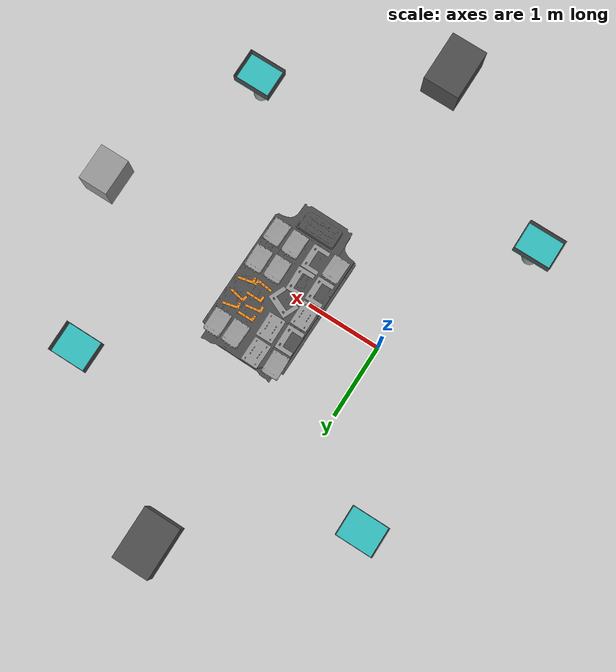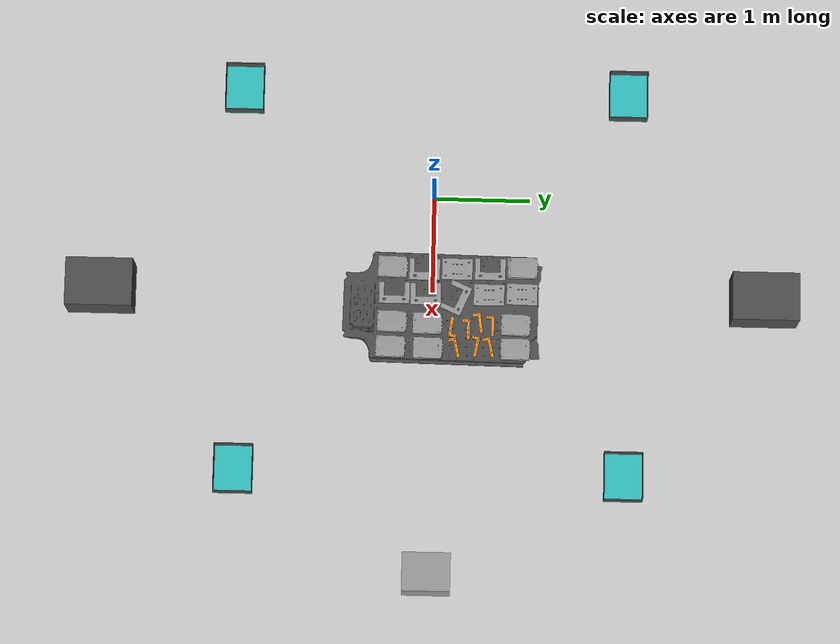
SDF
<sdf version="1.6">
 <world name="default">
  <scene><shadows>0</shadows><ambient>0.4 0.4 0.4 1</ambient><background>0.7 0.7 0.7 1</background></scene>
  <model name="ground_plane">
   <static>1</static>
   <link name="link">
    <collision name="collision">
     <geometry><plane><normal>0 0 1</normal><size>100 100</size></plane></geometry>
     <surface><friction><ode><mu>100</mu><mu2>50</mu2></ode></friction></surface>
    </collision>
    <visual name="visual">
     <cast_shadows>0</cast_shadows>
     <geometry><plane><normal>0 0 1</normal><size>100 100</size></plane></geometry>
     <material>
      <script><uri>file://media/materials/scripts/gazebo.material</uri><name>PR2/Grey3</name></script>
     </material>
    </visual>
   </link>
  </model>
  <light name="sun" type="directional">
   <pose>0 0 10 0 -0 0</pose>
   <diffuse>0.8 0.8 0.8 1</diffuse>
   <specular>0.2 0.2 0.2 1</specular>
   <attenuation>
    <range>1000</range>
    <constant>0.9</constant>
    <linear>0.01</linear>
    <quadratic>0.001</quadratic>
   </attenuation>
   <direction>-0.5 0.1 -0.9</direction>
  </light>
  <model name="animated_box_centre">
   <pose>4.0 0.0 0.25 0 0 0</pose>
   <link name="link">
    <collision name="collision"><geometry><box><size>0.4 0.4 0.5</size></box></geometry></collision>
    <visual name="visual">
     <geometry><box><size>0.4 0.5 0.5</size></box></geometry>
     <material>
      <script><uri>file://media/materials/scripts/gazebo.material</uri><name>Gazebo/Grey</name></script>
     </material>
    </visual>
   </link>
   <plugin name="move_centre" filename="libanimated_centre.so"/>
  </model>
  <model name="animated_box_1">
   <pose>1.05, 3.47, 0.25 0 0 0</pose>
   <link name="link">
    <collision name="collision"><geometry><box><size>0.5 0.7 0.5</size></box></geometry></collision>
    <visual name="visual">
     <geometry><box><size>0.5 0.7 0.5</size></box></geometry>
     <material>
      <script><uri>file://media/materials/scripts/gazebo.material</uri><name>Gazebo/DarkGrey</name></script>
     </material>
    </visual>
   </link>
   <plugin name="move1" filename="libanimated_left.so"/>
  </model>
  <model name="animated_box_2">
   <pose>1.05, -3.47, 0.25 0 0 0</pose>
   <link name="link">
    <collision name="collision"><geometry><box><size>0.5 0.7 0.5</size></box></geometry></collision>
    <visual name="visual">
     <geometry><box><size>0.5 0.7 0.5</size></box></geometry>
     <material>
      <script><uri>file://media/materials/scripts/gazebo.material</uri><name>Gazebo/DarkGrey</name></script>
     </material>
    </visual>
   </link>
   <plugin name="move2" filename="libanimated_right.so"/>
  </model>
  <model name="tesla_battery">
   <static>1</static>
   <link name="link0">
    <collision name="collision">
     <pose>0 0.15 -0.05445 0 -0 0</pose>
     <geometry><box><size>1 1.9 0.12</size></box></geometry>
     <surface><friction><ode><mu>1</mu><mu2>1</mu2></ode></friction></surface>
    </collision>
    <visual name="visual">
     <geometry><mesh><uri>model://tesla_battery_v2/meshes/tesla_batteryv2.dae</uri></mesh></geometry>
     <material>
      <script><uri>file://media/materials/scripts/gazebo.material</uri><name>Gazebo/DarkGrey</name></script>
     </material>
    </visual>
   </link>
   <pose>1.3153 -0.001845 0.8 0 -0 0</pose>
  </model>
  <model name="tesla_battery_support">
   <static>1</static>
   <link name="link0">
    <collision name="collision"><geometry><box><size>0.7 2.8 0.5</size></box></geometry></collision>
   </link>
   <pose>1.3 0 0.25 0 -0 0</pose>
  </model>
  <model name="bin_1">
   <static>1</static>
   <link name="column_link">
    <collision name="column">
     <pose>0 0 0.3 0 -0 0</pose>
     <geometry><box><size>0.4 0.5 0.6</size></box></geometry>
     <surface><friction><ode><mu>0.6</mu><mu2>0.6</mu2></ode></friction></surface>
    </collision>
    <visual name="column">
     <pose>0 0 0.3 0 -0 0</pose>
     <geometry><cylinder><radius>0.1</radius><length>0.6</length></cylinder></geometry>
     <material>
      <script><uri>file://media/materials/scripts/gazebo.material</uri><name>PR2/Grey4</name></script>
     </material>
    </visual>
   </link>
   <joint name="column2table" type="revolute">
    <parent>column_link</parent>
    <child>table_link</child>
    <pose>0 0 0.3 0 -0 0</pose>
   </joint>
   <link name="table_link">
    <collision name="surface">
     <pose>0 0 0.6 0 -0 0</pose>
     <geometry><box><size>0.5 0.4 0.03</size></box></geometry>
     <surface><friction><ode><mu>0.6</mu><mu2>0.6</mu2></ode></friction></surface>
    </collision>
    <visual name="surface">
     <pose>0 0 0.6 0 -0 0</pose>
     <geometry><box><size>0.5 0.4 0.03</size></box></geometry>
     <material>
      <script><uri>file://media/materials/scripts/gazebo.material</uri><name>Gazebo/Turquoise</name></script>
     </material>
    </visual>
   </link>
   <joint name="table2bin" type="prismatic">
    <parent>table_link</parent>
    <child>bin_link</child>
    <pose>0 0 1 0 -0 0</pose>
    <axis>
     <xyz>0 0 1</xyz>
     <use_parent_model_frame>0</use_parent_model_frame>
     <limit><lower>-1e+16</lower><upper>1e+16</upper></limit>
     <dynamics><spring_reference>0</spring_reference><spring_stiffness>0</spring_stiffness></dynamics>
    </axis>
   </joint>
   <link name="bin_link">
    <collision name="bin">
     <pose>0 0 0.68 0 -0 0</pose>
     <geometry><mesh><uri>model://table_bin/meshes/big_bin.stl</uri></mesh></geometry>
    </collision>
    <visual name="bin">
     <pose>0 0 0.68 0 -0 0</pose>
     <geometry><mesh><uri>model://table_bin/meshes/big_bin.dae</uri></mesh></geometry>
     <material>
      <script><uri>file://media/materials/scripts/gazebo.material</uri><name>Gazebo/DarkGrey</name></script>
     </material>
    </visual>
   </link>
   <pose>-1 2 0 0 -0 0</pose>
  </model>
  <model name="bin_2">
   <static>1</static>
   <link name="column_link">
    <collision name="column">
     <pose>0 0 0.3 0 -0 0</pose>
     <geometry><box><size>0.4 0.5 0.6</size></box></geometry>
     <surface><friction><ode><mu>0.6</mu><mu2>0.6</mu2></ode></friction></surface>
    </collision>
    <visual name="column">
     <pose>0 0 0.3 0 -0 0</pose>
     <geometry><cylinder><radius>0.1</radius><length>0.6</length></cylinder></geometry>
     <material>
      <script><uri>file://media/materials/scripts/gazebo.material</uri><name>PR2/Grey4</name></script>
     </material>
    </visual>
   </link>
   <joint name="column2table" type="revolute">
    <parent>column_link</parent>
    <child>table_link</child>
    <pose>0 0 0.3 0 -0 0</pose>
   </joint>
   <link name="table_link">
    <collision name="surface">
     <pose>0 0 0.6 0 -0 0</pose>
     <geometry><box><size>0.5 0.4 0.03</size></box></geometry>
     <surface><friction><ode><mu>0.6</mu><mu2>0.6</mu2></ode></friction></surface>
    </collision>
    <visual name="surface">
     <pose>0 0 0.6 0 -0 0</pose>
     <geometry><box><size>0.5 0.4 0.03</size></box></geometry>
     <material>
      <script><uri>file://media/materials/scripts/gazebo.material</uri><name>Gazebo/Turquoise</name></script>
     </material>
    </visual>
   </link>
   <joint name="table2bin" type="prismatic">
    <parent>table_link</parent>
    <child>bin_link</child>
    <pose>0 0 1 0 -0 0</pose>
    <axis>
     <xyz>0 0 1</xyz>
     <use_parent_model_frame>0</use_parent_model_frame>
     <limit><lower>-1e+16</lower><upper>1e+16</upper></limit>
     <dynamics><spring_reference>0</spring_reference><spring_stiffness>0</spring_stiffness></dynamics>
    </axis>
   </joint>
   <link name="bin_link">
    <collision name="bin">
     <pose>0 0 0.68 0 -0 0</pose>
     <geometry><mesh><uri>model://table_bin/meshes/big_bin.stl</uri></mesh></geometry>
    </collision>
    <visual name="bin">
     <pose>0 0 0.68 0 -0 0</pose>
     <geometry><mesh><uri>model://table_bin/meshes/big_bin.dae</uri></mesh></geometry>
     <material>
      <script><uri>file://media/materials/scripts/gazebo.material</uri><name>Gazebo/DarkGrey</name></script>
     </material>
    </visual>
   </link>
   <pose>-1 -2 0 0 -0 0</pose>
  </model>
  <model name="bin_3">
   <static>1</static>
   <link name="column_link">
    <collision name="column">
     <pose>0 0 0.3 0 -0 0</pose>
     <geometry><box><size>0.4 0.5 0.6</size></box></geometry>
     <surface><friction><ode><mu>0.6</mu><mu2>0.6</mu2></ode></friction></surface>
    </collision>
    <visual name="column">
     <pose>0 0 0.3 0 -0 0</pose>
     <geometry><cylinder><radius>0.1</radius><length>0.6</length></cylinder></geometry>
     <material>
      <script><uri>file://media/materials/scripts/gazebo.material</uri><name>PR2/Grey4</name></script>
     </material>
    </visual>
   </link>
   <joint name="column2table" type="revolute">
    <parent>column_link</parent>
    <child>table_link</child>
    <pose>0 0 0.3 0 -0 0</pose>
   </joint>
   <link name="table_link">
    <collision name="surface">
     <pose>0 0 0.6 0 -0 0</pose>
     <geometry><box><size>0.5 0.4 0.03</size></box></geometry>
     <surface><friction><ode><mu>0.6</mu><mu2>0.6</mu2></ode></friction></surface>
    </collision>
    <visual name="surface">
     <pose>0 0 0.6 0 -0 0</pose>
     <geometry><box><size>0.5 0.4 0.03</size></box></geometry>
     <material>
      <script><uri>file://media/materials/scripts/gazebo.material</uri><name>Gazebo/Turquoise</name></script>
     </material>
    </visual>
   </link>
   <joint name="table2bin" type="prismatic">
    <parent>table_link</parent>
    <child>bin_link</child>
    <pose>0 0 1 0 -0 0</pose>
    <axis>
     <xyz>0 0 1</xyz>
     <use_parent_model_frame>0</use_parent_model_frame>
     <limit><lower>-1e+16</lower><upper>1e+16</upper></limit>
     <dynamics><spring_reference>0</spring_reference><spring_stiffness>0</spring_stiffness></dynamics>
    </axis>
   </joint>
   <link name="bin_link">
    <collision name="bin">
     <pose>0 0 0.68 0 -0 0</pose>
     <geometry><mesh><uri>model://table_bin/meshes/big_bin.stl</uri></mesh></geometry>
    </collision>
    <visual name="bin">
     <pose>0 0 0.68 0 -0 0</pose>
     <geometry><mesh><uri>model://table_bin/meshes/big_bin.dae</uri></mesh></geometry>
     <material>
      <script><uri>file://media/materials/scripts/gazebo.material</uri><name>Gazebo/DarkGrey</name></script>
     </material>
    </visual>
   </link>
   <pose>3 -2 0 0 -0 0</pose>
  </model>
  <model name="bin_4">
   <static>1</static>
   <link name="column_link">
    <collision name="column">
     <pose>0 0 0.3 0 -0 0</pose>
     <geometry><box><size>0.4 0.5 0.6</size></box></geometry>
     <surface><friction><ode><mu>0.6</mu><mu2>0.6</mu2></ode></friction></surface>
    </collision>
    <visual name="column">
     <pose>0 0 0.3 0 -0 0</pose>
     <geometry><cylinder><radius>0.1</radius><length>0.6</length></cylinder></geometry>
     <material>
      <script><uri>file://media/materials/scripts/gazebo.material</uri><name>PR2/Grey4</name></script>
     </material>
    </visual>
   </link>
   <joint name="column2table" type="revolute">
    <parent>column_link</parent>
    <child>table_link</child>
    <pose>0 0 0.3 0 -0 0</pose>
   </joint>
   <link name="table_link">
    <collision name="surface">
     <pose>0 0 0.6 0 -0 0</pose>
     <geometry><box><size>0.5 0.4 0.03</size></box></geometry>
     <surface><friction><ode><mu>0.6</mu><mu2>0.6</mu2></ode></friction></surface>
    </collision>
    <visual name="surface">
     <pose>0 0 0.6 0 -0 0</pose>
     <geometry><box><size>0.5 0.4 0.03</size></box></geometry>
     <material>
      <script><uri>file://media/materials/scripts/gazebo.material</uri><name>Gazebo/Turquoise</name></script>
     </material>
    </visual>
   </link>
   <joint name="table2bin" type="prismatic">
    <parent>table_link</parent>
    <child>bin_link</child>
    <pose>0 0 1 0 -0 0</pose>
    <axis>
     <xyz>0 0 1</xyz>
     <use_parent_model_frame>0</use_parent_model_frame>
     <limit><lower>-1e+16</lower><upper>1e+16</upper></limit>
     <dynamics><spring_reference>0</spring_reference><spring_stiffness>0</spring_stiffness></dynamics>
    </axis>
   </joint>
   <link name="bin_link">
    <collision name="bin">
     <pose>0 0 0.68 0 -0 0</pose>
     <geometry><mesh><uri>model://table_bin/meshes/big_bin.stl</uri></mesh></geometry>
    </collision>
    <visual name="bin">
     <pose>0 0 0.68 0 -0 0</pose>
     <geometry><mesh><uri>model://table_bin/meshes/big_bin.dae</uri></mesh></geometry>
     <material>
      <script><uri>file://media/materials/scripts/gazebo.material</uri><name>Gazebo/DarkGrey</name></script>
     </material>
    </visual>
   </link>
   <pose>3 2 0 0 -0 0</pose>
  </model>
  <model name="leaf6">
   <static>0</static>
   <link name="leaf_cell_link">
    <collision name="collision">
     <geometry><box><size>0.2228 0.3149 0.035</size></box></geometry>
     <surface><friction><ode><mu>1</mu><mu2>1</mu2></ode></friction></surface>
    </collision>
    <visual name="visual">
     <geometry><mesh><uri>model://leaf_cell/meshes/leaf_cell.dae</uri></mesh></geometry>
     <material>
      <script><uri>file://media/materials/scripts/gazebo.material</uri><name>Gazebo/Grey</name></script>
     </material>
    </visual>
    <inertial>
     <pose>0 0 0 0 0 -1.5707</pose>
     <mass>0.1</mass>
     <inertia>
      <ixx>0.000539835</ixx>
      <iyy>0.00075853</iyy>
      <izz>0.0012813</izz>
      <ixy>0</ixy>
      <ixz>0</ixz>
      <iyz>0</iyz>
     </inertia>
    </inertial>
   </link>
   <pose>1.72914 0.869771 0.823034 0.000103 0 -2e-06</pose>
  </model>
  <model name="leaf66">
   <static>0</static>
   <link name="leaf_cell_link">
    <collision name="collision">
     <geometry><box><size>0.2228 0.3149 0.035</size></box></geometry>
     <surface><friction><ode><mu>1</mu><mu2>1</mu2></ode></friction></surface>
    </collision>
    <visual name="visual">
     <geometry><mesh><uri>model://leaf_cell/meshes/leaf_cell.dae</uri></mesh></geometry>
     <material>
      <script><uri>file://media/materials/scripts/gazebo.material</uri><name>Gazebo/Grey</name></script>
     </material>
    </visual>
    <inertial>
     <pose>0 0 0 0 0 -1.5707</pose>
     <mass>0.1</mass>
     <inertia>
      <ixx>0.000539835</ixx>
      <iyy>0.00075853</iyy>
      <izz>0.0012813</izz>
      <ixy>0</ixy>
      <ixz>0</ixz>
      <iyz>0</iyz>
     </inertia>
    </inertial>
   </link>
   <pose>1.47735 0.870249 0.823044 0 5.4e-05 -0.028102</pose>
  </model>
  <model name="leaf5">
   <static>0</static>
   <link name="leaf_cell_link">
    <collision name="collision">
     <geometry><box><size>0.2228 0.3149 0.035</size></box></geometry>
     <surface><friction><ode><mu>1</mu><mu2>1</mu2></ode></friction></surface>
    </collision>
    <visual name="visual">
     <geometry><mesh><uri>model://leaf_cell/meshes/leaf_cell.dae</uri></mesh></geometry>
     <material>
      <script><uri>file://media/materials/scripts/gazebo.material</uri><name>Gazebo/Grey</name></script>
     </material>
    </visual>
    <inertial>
     <pose>0 0 0 0 0 -1.5707</pose>
     <mass>0.1</mass>
     <inertia>
      <ixx>0.000539835</ixx>
      <iyy>0.00075853</iyy>
      <izz>0.0012813</izz>
      <ixy>0</ixy>
      <ixz>0</ixz>
      <iyz>0</iyz>
     </inertia>
    </inertial>
   </link>
   <pose>1.73347 -0.029325 0.823034 -0.000103 -0 0.004565</pose>
  </model>
  <model name="leaf55">
   <static>0</static>
   <link name="leaf_cell_link">
    <collision name="collision">
     <geometry><box><size>0.2228 0.3149 0.035</size></box></geometry>
     <surface><friction><ode><mu>1</mu><mu2>1</mu2></ode></friction></surface>
    </collision>
    <visual name="visual">
     <geometry><mesh><uri>model://leaf_cell/meshes/leaf_cell.dae</uri></mesh></geometry>
     <material>
      <script><uri>file://media/materials/scripts/gazebo.material</uri><name>Gazebo/Grey</name></script>
     </material>
    </visual>
    <inertial>
     <pose>0 0 0 0 0 -1.5707</pose>
     <mass>0.1</mass>
     <inertia>
      <ixx>0.000539835</ixx>
      <iyy>0.00075853</iyy>
      <izz>0.0012813</izz>
      <ixy>0</ixy>
      <ixz>0</ixz>
      <iyz>0</iyz>
     </inertia>
    </inertial>
   </link>
   <pose>1.47744 -0.038686 0.823045 3e-05 3e-06 -0.002691</pose>
  </model>
  <model name="leaf4">
   <static>0</static>
   <link name="leaf_cell_link">
    <collision name="collision">
     <geometry><box><size>0.2228 0.3149 0.035</size></box></geometry>
     <surface><friction><ode><mu>1</mu><mu2>1</mu2></ode></friction></surface>
    </collision>
    <visual name="visual">
     <geometry><mesh><uri>model://leaf_cell/meshes/leaf_cell.dae</uri></mesh></geometry>
     <material>
      <script><uri>file://media/materials/scripts/gazebo.material</uri><name>Gazebo/Grey</name></script>
     </material>
    </visual>
    <inertial>
     <pose>0 0 0 0 0 -1.5707</pose>
     <mass>0.1</mass>
     <inertia>
      <ixx>0.000539835</ixx>
      <iyy>0.00075853</iyy>
      <izz>0.0012813</izz>
      <ixy>0</ixy>
      <ixz>0</ixz>
      <iyz>0</iyz>
     </inertia>
    </inertial>
   </link>
   <pose>1.72591 -0.414141 0.82305 0 0 -0.023072</pose>
  </model>
  <model name="leaf44">
   <static>0</static>
   <link name="leaf_cell_link">
    <collision name="collision">
     <geometry><box><size>0.2228 0.3149 0.035</size></box></geometry>
     <surface><friction><ode><mu>1</mu><mu2>1</mu2></ode></friction></surface>
    </collision>
    <visual name="visual">
     <geometry><mesh><uri>model://leaf_cell/meshes/leaf_cell.dae</uri></mesh></geometry>
     <material>
      <script><uri>file://media/materials/scripts/gazebo.material</uri><name>Gazebo/Grey</name></script>
     </material>
    </visual>
    <inertial>
     <pose>0 0 0 0 0 -1.5707</pose>
     <mass>0.1</mass>
     <inertia>
      <ixx>0.000539835</ixx>
      <iyy>0.00075853</iyy>
      <izz>0.0012813</izz>
      <ixy>0</ixy>
      <ixz>0</ixz>
      <iyz>0</iyz>
     </inertia>
    </inertial>
   </link>
   <pose>1.46423 -0.403984 0.82305 0 0 -0.014374</pose>
  </model>
  <model name="leaf1">
   <static>0</static>
   <link name="leaf_cell_link">
    <collision name="collision">
     <geometry><box><size>0.2228 0.3149 0.035</size></box></geometry>
     <surface><friction><ode><mu>1</mu><mu2>1</mu2></ode></friction></surface>
    </collision>
    <visual name="visual">
     <geometry><mesh><uri>model://leaf_cell/meshes/leaf_cell.dae</uri></mesh></geometry>
     <material>
      <script><uri>file://media/materials/scripts/gazebo.material</uri><name>Gazebo/Grey</name></script>
     </material>
    </visual>
    <inertial>
     <pose>0 0 0 0 0 -1.5707</pose>
     <mass>0.1</mass>
     <inertia>
      <ixx>0.000539835</ixx>
      <iyy>0.00075853</iyy>
      <izz>0.0012813</izz>
      <ixy>0</ixy>
      <ixz>0</ixz>
      <iyz>0</iyz>
     </inertia>
    </inertial>
   </link>
   <pose>0.8789 0.932612 0.823038 7.8e-05 -0 0.018268</pose>
  </model>
  <model name="plate_a_1">
   <static>0</static>
   <link name="link0">
    <collision name="collision">
     <geometry><mesh><uri>model://plate_a/meshes/plate_a_centroid.stl</uri></mesh></geometry>
     <surface><friction><ode><mu>0.99</mu><mu2>0.99</mu2></ode></friction></surface>
    </collision>
    <visual name="visual">
     <geometry><mesh><uri>model://plate_a/meshes/plate_a_centroid.dae</uri></mesh></geometry>
     <material>
      <script><uri>file://media/materials/scripts/gazebo.material</uri><name>PR2/Grey1</name></script>
     </material>
    </visual>
    <inertial>
     <mass>0.1</mass>
     <inertia>
      <ixx>0.00082718</ixx>
      <ixy>0</ixy>
      <ixz>0</ixz>
      <iyy>0.00043403</iyy>
      <iyz>0</iyz>
      <izz>0.00125955</izz>
     </inertia>
    </inertial>
   </link>
   <pose>0.950893 0.593611 0.810545 6e-05 -1e-05 0.001273</pose>
  </model>
  <model name="leaf2">
   <static>0</static>
   <link name="leaf_cell_link">
    <collision name="collision">
     <geometry><box><size>0.2228 0.3149 0.035</size></box></geometry>
     <surface><friction><ode><mu>1</mu><mu2>1</mu2></ode></friction></surface>
    </collision>
    <visual name="visual">
     <geometry><mesh><uri>model://leaf_cell/meshes/leaf_cell.dae</uri></mesh></geometry>
     <material>
      <script><uri>file://media/materials/scripts/gazebo.material</uri><name>Gazebo/Grey</name></script>
     </material>
    </visual>
    <inertial>
     <pose>0 0 0 0 0 -1.5707</pose>
     <mass>0.1</mass>
     <inertia>
      <ixx>0.000539835</ixx>
      <iyy>0.00075853</iyy>
      <izz>0.0012813</izz>
      <ixy>0</ixy>
      <ixz>0</ixz>
      <iyz>0</iyz>
     </inertia>
    </inertial>
   </link>
   <pose>0.892875 -0.406849 0.82305 0 0 -0.017489</pose>
  </model>
  <model name="plate_b_1">
   <static>0</static>
   <link name="link0">
    <collision name="collision">
     <geometry><box><size>0.2228 0.3149 0.01</size></box></geometry>
     <surface><friction><ode><mu>0.99</mu><mu2>0.99</mu2></ode></friction></surface>
    </collision>
    <visual name="visual">
     <geometry><mesh><uri>model://plate_b/meshes/plate_b.dae</uri></mesh></geometry>
     <material>
      <script><uri>file://media/materials/scripts/gazebo.material</uri><name>Gazebo/Grey</name></script>
     </material>
    </visual>
    <inertial>
     <mass>0.1</mass>
     <inertia>
      <ixx>0.00082718</ixx>
      <ixy>0</ixy>
      <ixz>0</ixz>
      <iyy>0.00043403</iyy>
      <iyz>0</iyz>
      <izz>0.00125955</izz>
     </inertia>
    </inertial>
   </link>
   <pose>0.902235 0.253445 0.81055 0 0 -0.000794</pose>
  </model>
  <model name="plate_a_2">
   <static>0</static>
   <link name="link0">
    <collision name="collision">
     <geometry><mesh><uri>model://plate_a/meshes/plate_a_centroid.stl</uri></mesh></geometry>
     <surface><friction><ode><mu>0.99</mu><mu2>0.99</mu2></ode></friction></surface>
    </collision>
    <visual name="visual">
     <geometry><mesh><uri>model://plate_a/meshes/plate_a_centroid.dae</uri></mesh></geometry>
     <material>
      <script><uri>file://media/materials/scripts/gazebo.material</uri><name>PR2/Grey1</name></script>
     </material>
    </visual>
    <inertial>
     <mass>0.1</mass>
     <inertia>
      <ixx>0.00082718</ixx>
      <ixy>0</ixy>
      <ixz>0</ixz>
      <iyy>0.00043403</iyy>
      <iyz>0</iyz>
      <izz>0.00125955</izz>
     </inertia>
    </inertial>
   </link>
   <pose>0.962637 -0.082077 0.810545 6.1e-05 -8e-06 0.001185</pose>
  </model>
  <gravity>0 0 -9.8</gravity>
  <magnetic_field>6e-06 2.3e-05 -4.2e-05</magnetic_field>
  <atmosphere type="adiabatic"/>
  <physics name="default_physics" default="0" type="ode">
   <max_step_size>0.001</max_step_size>
   <real_time_factor>1</real_time_factor>
   <real_time_update_rate>1000</real_time_update_rate>
  </physics>
  <spherical_coordinates>
   <surface_model>EARTH_WGS84</surface_model>
   <latitude_deg>0</latitude_deg>
   <longitude_deg>0</longitude_deg>
   <elevation>0</elevation>
   <heading_deg>0</heading_deg>
  </spherical_coordinates>
  <model name="plate_a_1_clone">
   <static>0</static>
   <link name="link0">
    <collision name="collision">
     <geometry><mesh><uri>model://plate_a/meshes/plate_a_centroid.stl</uri></mesh></geometry>
     <surface><friction><ode><mu>0.99</mu><mu2>0.99</mu2></ode></friction></surface>
    </collision>
    <visual name="visual">
     <geometry><mesh><uri>model://plate_a/meshes/plate_a_centroid.dae</uri></mesh></geometry>
     <material>
      <script><uri>file://media/materials/scripts/gazebo.material</uri><name>PR2/Grey1</name></script>
     </material>
    </visual>
    <inertial>
     <mass>0.1</mass>
     <inertia>
      <ixx>0.00082718</ixx>
      <ixy>0</ixy>
      <ixz>0</ixz>
      <iyy>0.00043403</iyy>
      <iyz>0</iyz>
      <izz>0.00125955</izz>
     </inertia>
    </inertial>
   </link>
   <pose>1.22124 -0.064447 0.81055 0 -0 0.025336</pose>
  </model>
  <model name="plate_a_1_clone_clone">
   <static>0</static>
   <link name="link0">
    <collision name="collision">
     <geometry><mesh><uri>model://plate_a/meshes/plate_a_centroid.stl</uri></mesh></geometry>
     <surface><friction><ode><mu>0.99</mu><mu2>0.99</mu2></ode></friction></surface>
    </collision>
    <visual name="visual">
     <geometry><mesh><uri>model://plate_a/meshes/plate_a_centroid.dae</uri></mesh></geometry>
     <material>
      <script><uri>file://media/materials/scripts/gazebo.material</uri><name>PR2/Grey1</name></script>
     </material>
    </visual>
    <inertial>
     <mass>0.1</mass>
     <inertia>
      <ixx>0.00082718</ixx>
      <ixy>0</ixy>
      <ixz>0</ixz>
      <iyy>0.00043403</iyy>
      <iyz>0</iyz>
      <izz>0.00125955</izz>
     </inertia>
    </inertial>
   </link>
   <pose>1.21441 -0.389789 0.810545 6.2e-05 -6e-06 -0.003599</pose>
  </model>
  <model name="plate_b_1_clone">
   <static>0</static>
   <link name="link0">
    <collision name="collision">
     <geometry><box><size>0.2228 0.3149 0.01</size></box></geometry>
     <surface><friction><ode><mu>0.99</mu><mu2>0.99</mu2></ode></friction></surface>
    </collision>
    <visual name="visual">
     <geometry><mesh><uri>model://plate_b/meshes/plate_b.dae</uri></mesh></geometry>
     <material>
      <script><uri>file://media/materials/scripts/gazebo.material</uri><name>Gazebo/Grey</name></script>
     </material>
    </visual>
    <inertial>
     <mass>0.1</mass>
     <inertia>
      <ixx>0.00082718</ixx>
      <ixy>0</ixy>
      <ixz>0</ixz>
      <iyy>0.00043403</iyy>
      <iyz>0</iyz>
      <izz>0.00125955</izz>
     </inertia>
    </inertial>
   </link>
   <pose>1.16487 0.586201 0.810536 -9.1e-05 -0 0.008517</pose>
  </model>
  <model name="plate_b_1_clone_clone">
   <static>0</static>
   <link name="link0">
    <collision name="collision">
     <geometry><box><size>0.2228 0.3149 0.01</size></box></geometry>
     <surface><friction><ode><mu>0.99</mu><mu2>0.99</mu2></ode></friction></surface>
    </collision>
    <visual name="visual">
     <geometry><mesh><uri>model://plate_b/meshes/plate_b.dae</uri></mesh></geometry>
     <material>
      <script><uri>file://media/materials/scripts/gazebo.material</uri><name>Gazebo/Grey</name></script>
     </material>
    </visual>
    <inertial>
     <mass>0.1</mass>
     <inertia>
      <ixx>0.00082718</ixx>
      <ixy>0</ixy>
      <ixz>0</ixz>
      <iyy>0.00043403</iyy>
      <iyz>0</iyz>
      <izz>0.00125955</izz>
     </inertia>
    </inertial>
   </link>
   <pose>1.15266 0.925296 0.810537 0 0.000113 -0.017222</pose>
  </model>
  <model name="plate_a_2_clone">
   <static>0</static>
   <link name="link0">
    <collision name="collision">
     <geometry><mesh><uri>model://plate_a/meshes/plate_a_centroid.stl</uri></mesh></geometry>
     <surface><friction><ode><mu>0.99</mu><mu2>0.99</mu2></ode></friction></surface>
    </collision>
    <visual name="visual">
     <geometry><mesh><uri>model://plate_a/meshes/plate_a_centroid.dae</uri></mesh></geometry>
     <material>
      <script><uri>file://media/materials/scripts/gazebo.material</uri><name>PR2/Grey1</name></script>
     </material>
    </visual>
    <inertial>
     <mass>0.1</mass>
     <inertia>
      <ixx>0.00082718</ixx>
      <ixy>0</ixy>
      <ixz>0</ixz>
      <iyy>0.00043403</iyy>
      <iyz>0</iyz>
      <izz>0.00125955</izz>
     </inertia>
    </inertial>
   </link>
   <pose>1.22422 0.297113 0.810545 6.2e-05 -6e-06 1.15629</pose>
  </model>
  <model name="bracket">
   <static>0</static>
   <link name="link0">
    <collision name="collision">
     <geometry><mesh><uri>model://bracket/meshes/bracket.stl</uri></mesh></geometry>
     <surface><friction><ode><mu>0.99</mu><mu2>0.99</mu2></ode></friction></surface>
    </collision>
    <visual name="visual">
     <geometry><mesh><uri>model://bracket/meshes/bracket_modified.dae</uri></mesh></geometry>
     <material>
      <script><uri>file://media/materials/scripts/gazebo.material</uri><name>Gazebo/Orange</name></script>
     </material>
    </visual>
    <inertial>
     <pose>-0.005 0 0.0025 0 -0 0</pose>
     <mass>0.1</mass>
     <inertia>
      <ixx>5.417e-05</ixx>
      <ixy>0</ixy>
      <ixz>0</ixz>
      <iyy>0.000368333</iyy>
      <iyz>0</iyz>
      <izz>0.000420833</izz>
     </inertia>
    </inertial>
   </link>
   <pose>1.71306 0.467584 0.80805 0 0 -0.188486</pose>
  </model>
  <model name="bracket_clone">
   <static>0</static>
   <link name="link0">
    <collision name="collision">
     <geometry><mesh><uri>model://bracket/meshes/bracket.stl</uri></mesh></geometry>
     <surface><friction><ode><mu>0.99</mu><mu2>0.99</mu2></ode></friction></surface>
    </collision>
    <visual name="visual">
     <geometry><mesh><uri>model://bracket/meshes/bracket_modified.dae</uri></mesh></geometry>
     <material>
      <script><uri>file://media/materials/scripts/gazebo.material</uri><name>Gazebo/Orange</name></script>
     </material>
    </visual>
    <inertial>
     <pose>-0.005 0 0.0025 0 -0 0</pose>
     <mass>0.1</mass>
     <inertia>
      <ixx>5.417e-05</ixx>
      <ixy>0</ixy>
      <ixz>0</ixz>
      <iyy>0.000368333</iyy>
      <iyz>0</iyz>
      <izz>0.000420833</izz>
     </inertia>
    </inertial>
   </link>
   <pose>1.72531 0.260477 0.808039 -2.6e-05 -0.000117 0.220721</pose>
  </model>
  <model name="bracket_clone_0">
   <static>0</static>
   <link name="link0">
    <collision name="collision">
     <geometry><mesh><uri>model://bracket/meshes/bracket.stl</uri></mesh></geometry>
     <surface><friction><ode><mu>0.99</mu><mu2>0.99</mu2></ode></friction></surface>
    </collision>
    <visual name="visual">
     <geometry><mesh><uri>model://bracket/meshes/bracket_modified.dae</uri></mesh></geometry>
     <material>
      <script><uri>file://media/materials/scripts/gazebo.material</uri><name>Gazebo/Orange</name></script>
     </material>
    </visual>
    <inertial>
     <pose>-0.005 0 0.0025 0 -0 0</pose>
     <mass>0.1</mass>
     <inertia>
      <ixx>5.417e-05</ixx>
      <ixy>0</ixy>
      <ixz>0</ixz>
      <iyy>0.000368333</iyy>
      <iyz>0</iyz>
      <izz>0.000420833</izz>
     </inertia>
    </inertial>
   </link>
   <pose>1.7152 0.611776 0.808048 0.000115 -0 0.226468</pose>
  </model>
  <model name="bracket_clone_1">
   <static>0</static>
   <link name="link0">
    <collision name="collision">
     <geometry><mesh><uri>model://bracket/meshes/bracket.stl</uri></mesh></geometry>
     <surface><friction><ode><mu>0.99</mu><mu2>0.99</mu2></ode></friction></surface>
    </collision>
    <visual name="visual">
     <geometry><mesh><uri>model://bracket/meshes/bracket_modified.dae</uri></mesh></geometry>
     <material>
      <script><uri>file://media/materials/scripts/gazebo.material</uri><name>Gazebo/Orange</name></script>
     </material>
    </visual>
    <inertial>
     <pose>-0.005 0 0.0025 0 -0 0</pose>
     <mass>0.1</mass>
     <inertia>
      <ixx>5.417e-05</ixx>
      <ixy>0</ixy>
      <ixz>0</ixz>
      <iyy>0.000368333</iyy>
      <iyz>0</iyz>
      <izz>0.000420833</izz>
     </inertia>
    </inertial>
   </link>
   <pose>1.49222 0.628172 0.808048 0.000141 0 0.011543</pose>
  </model>
  <model name="bracket_clone_2">
   <static>0</static>
   <link name="link0">
    <collision name="collision">
     <geometry><mesh><uri>model://bracket/meshes/bracket.stl</uri></mesh></geometry>
     <surface><friction><ode><mu>0.99</mu><mu2>0.99</mu2></ode></friction></surface>
    </collision>
    <visual name="visual">
     <geometry><mesh><uri>model://bracket/meshes/bracket_modified.dae</uri></mesh></geometry>
     <material>
      <script><uri>file://media/materials/scripts/gazebo.material</uri><name>Gazebo/Orange</name></script>
     </material>
    </visual>
    <inertial>
     <pose>-0.005 0 0.0025 0 -0 0</pose>
     <mass>0.1</mass>
     <inertia>
      <ixx>5.417e-05</ixx>
      <ixy>0</ixy>
      <ixz>0</ixz>
      <iyy>0.000368333</iyy>
      <iyz>0</iyz>
      <izz>0.000420833</izz>
     </inertia>
    </inertial>
   </link>
   <pose>1.46439 0.501624 0.808048 0.000141 -0 0.150219</pose>
  </model>
  <model name="bracket_clone_3">
   <static>0</static>
   <link name="link0">
    <collision name="collision">
     <geometry><mesh><uri>model://bracket/meshes/bracket.stl</uri></mesh></geometry>
     <surface><friction><ode><mu>0.99</mu><mu2>0.99</mu2></ode></friction></surface>
    </collision>
    <visual name="visual">
     <geometry><mesh><uri>model://bracket/meshes/bracket_modified.dae</uri></mesh></geometry>
     <material>
      <script><uri>file://media/materials/scripts/gazebo.material</uri><name>Gazebo/Orange</name></script>
     </material>
    </visual>
    <inertial>
     <pose>-0.005 0 0.0025 0 -0 0</pose>
     <mass>0.1</mass>
     <inertia>
      <ixx>5.417e-05</ixx>
      <ixy>0</ixy>
      <ixz>0</ixz>
      <iyy>0.000368333</iyy>
      <iyz>0</iyz>
      <izz>0.000420833</izz>
     </inertia>
    </inertial>
   </link>
   <pose>1.53441 0.379924 0.808045 -7.8e-05 -0 -0.020892</pose>
  </model>
  <model name="bracket_clone_3_clone">
   <static>0</static>
   <link name="link0">
    <collision name="collision">
     <geometry><mesh><uri>model://bracket/meshes/bracket.stl</uri></mesh></geometry>
     <surface><friction><ode><mu>0.99</mu><mu2>0.99</mu2></ode></friction></surface>
    </collision>
    <visual name="visual">
     <geometry><mesh><uri>model://bracket/meshes/bracket_modified.dae</uri></mesh></geometry>
     <material>
      <script><uri>file://media/materials/scripts/gazebo.material</uri><name>Gazebo/Orange</name></script>
     </material>
    </visual>
    <inertial>
     <pose>-0.005 0 0.0025 0 -0 0</pose>
     <mass>0.1</mass>
     <inertia>
      <ixx>5.417e-05</ixx>
      <ixy>0</ixy>
      <ixz>0</ixz>
      <iyy>0.000368333</iyy>
      <iyz>0</iyz>
      <izz>0.000420833</izz>
     </inertia>
    </inertial>
   </link>
   <pose>1.49708 0.203416 0.808045 -0 4.4e-05 3.00437</pose>
  </model>
 </world>
</sdf>
